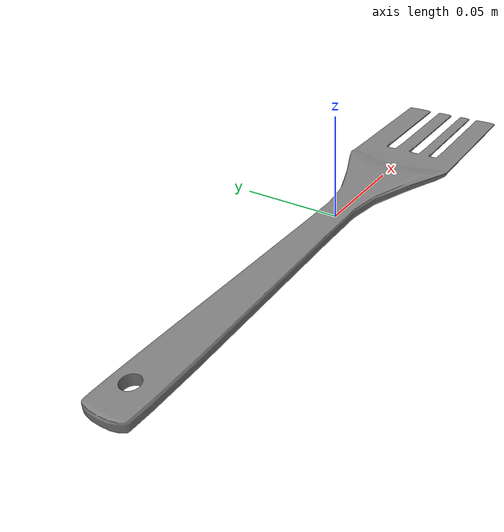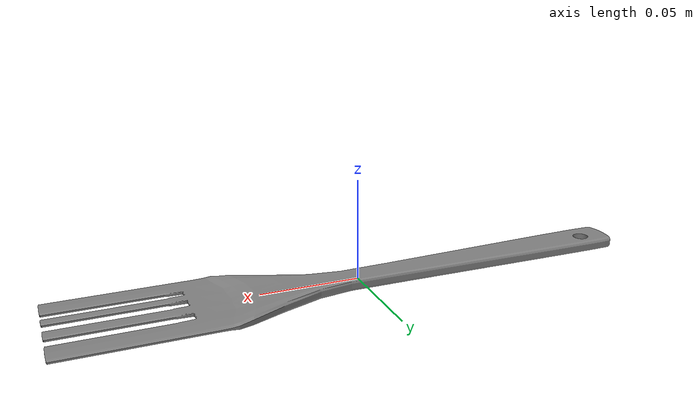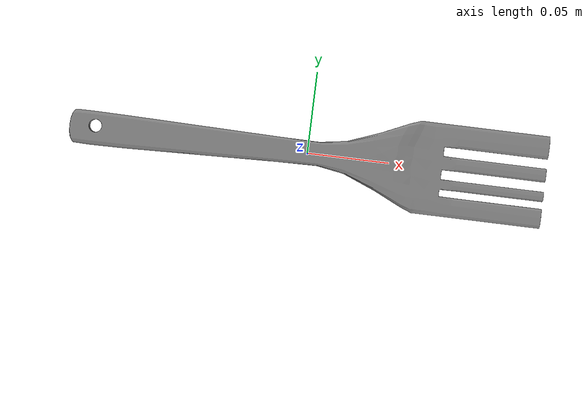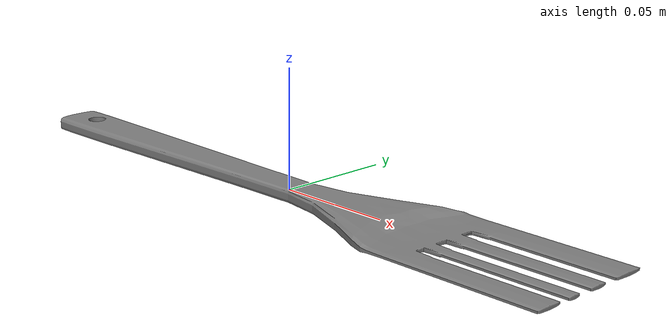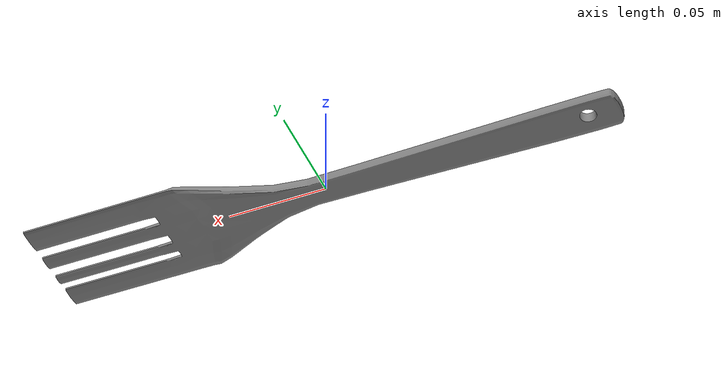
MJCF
<mujoco model="wooden_fork">
    <compiler angle="radian" meshdir="../meshes/" texturedir="../textures/" autolimits="true" inertiafromgeom="true"/>
    <asset>
        <mesh name="WoodenFork" file="obj/WoodenFork.obj" />
        <mesh name="UCX_WoodenFork_001" file="stl/UCX_WoodenFork_001.stl" />
		<mesh name="UCX_WoodenFork_002" file="stl/UCX_WoodenFork_002.stl" />
		<mesh name="UCX_WoodenFork_003" file="stl/UCX_WoodenFork_003.stl" />
		<mesh name="UCX_WoodenFork_004" file="stl/UCX_WoodenFork_004.stl" />
		<mesh name="UCX_WoodenFork_005" file="stl/UCX_WoodenFork_005.stl" />
		<mesh name="UCX_WoodenFork_006" file="stl/UCX_WoodenFork_006.stl" />
		<mesh name="UCX_WoodenFork_007" file="stl/UCX_WoodenFork_007.stl" />
		<mesh name="UCX_WoodenFork_008" file="stl/UCX_WoodenFork_008.stl" />
		<mesh name="UCX_WoodenFork_009" file="stl/UCX_WoodenFork_009.stl" />
		<mesh name="UCX_WoodenFork_010" file="stl/UCX_WoodenFork_010.stl" />
    </asset>
    <default>
        <default class="wooden_fork_visual">
            <geom contype="0" conaffinity="0" />
        </default>
        <default class="wooden_fork_collision">
            <geom rgba="0.9 0.9 0.9 0.0" />
        </default>
    </default>
    <worldbody>
        <body name="wooden_fork">
            <freejoint />
            <inertial mass="0.02809547260403633" pos="-0.0035083030816167593 0.00012133402196923271 1.0929613658561266e-08" quat="0.9999992847442627 7.312320917662873e-07 -1.095122215133415e-07 0.0011914810165762901" diaginertia="3.1255190151568968e-06 0.000181761643034406 0.00018478804850019515"/>
            <geom name="WoodenFork" pos="0.0 0.0 0.0" quat="1.0 0.0 0.0 0.0" type="mesh" mesh="WoodenFork" class="wooden_fork_visual" />
            <geom name="UCX_WoodenFork_001" type="mesh" pos="0.0 0.0 0.0" quat="1.0 0.0 0.0 0.0" mesh="UCX_WoodenFork_001" class="wooden_fork_collision"/>
            <geom name="UCX_WoodenFork_002" type="mesh" pos="0.0 0.0 0.0" quat="1.0 0.0 0.0 0.0" mesh="UCX_WoodenFork_002" class="wooden_fork_collision"/>
            <geom name="UCX_WoodenFork_003" type="mesh" pos="0.0 0.0 0.0" quat="1.0 0.0 0.0 0.0" mesh="UCX_WoodenFork_003" class="wooden_fork_collision"/>
            <geom name="UCX_WoodenFork_004" type="mesh" pos="0.0 0.0 0.0" quat="1.0 0.0 0.0 0.0" mesh="UCX_WoodenFork_004" class="wooden_fork_collision"/>
            <geom name="UCX_WoodenFork_005" type="mesh" pos="0.0 0.0 0.0" quat="1.0 0.0 0.0 0.0" mesh="UCX_WoodenFork_005" class="wooden_fork_collision"/>
            <geom name="UCX_WoodenFork_006" type="mesh" pos="0.0 0.0 0.0" quat="1.0 0.0 0.0 0.0" mesh="UCX_WoodenFork_006" class="wooden_fork_collision"/>
            <geom name="UCX_WoodenFork_007" type="mesh" pos="0.0 0.0 0.0" quat="1.0 0.0 0.0 0.0" mesh="UCX_WoodenFork_007" class="wooden_fork_collision"/>
            <geom name="UCX_WoodenFork_008" type="mesh" pos="0.0 0.0 0.0" quat="1.0 0.0 0.0 0.0" mesh="UCX_WoodenFork_008" class="wooden_fork_collision"/>
            <geom name="UCX_WoodenFork_009" type="mesh" pos="0.0 0.0 0.0" quat="1.0 0.0 0.0 0.0" mesh="UCX_WoodenFork_009" class="wooden_fork_collision"/>
            <geom name="UCX_WoodenFork_010" type="mesh" pos="0.0 0.0 0.0" quat="1.0 0.0 0.0 0.0" mesh="UCX_WoodenFork_010" class="wooden_fork_collision"/>
        </body>
    </worldbody>
    <equality />
    <contact />
</mujoco>
